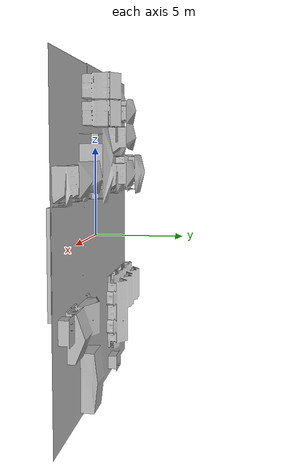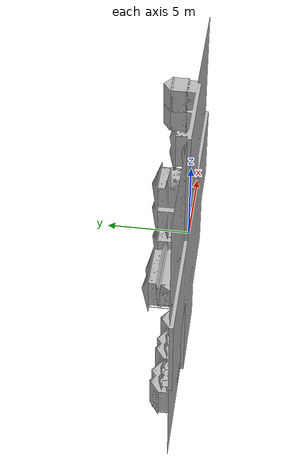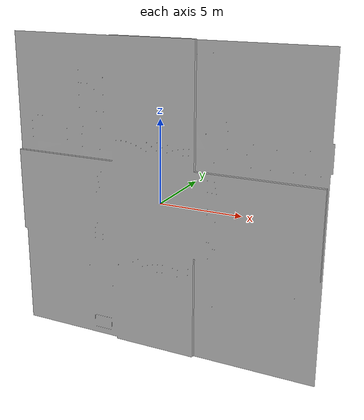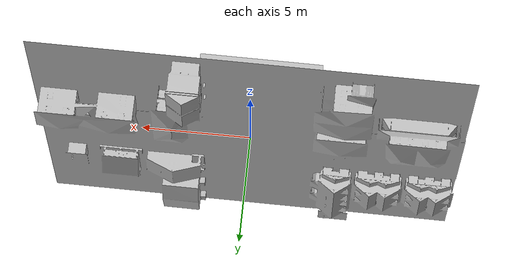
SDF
<?xml version="1.0" ?>
<sdf version="1.6">
  <model name="street_environment">
    <static>true</static>
    <link name="link">

      <!-- COLISIÓN -->
      <collision name="collision">
        <geometry>
          <mesh>
            <scale>0.2 0.2 0.2</scale>
            <uri>model://street_environment/meshes/Street_environment_V02.obj</uri>
          </mesh>
        </geometry>
      </collision>

      <!-- VISUAL -->
      <visual name="visual">
        <geometry>
          <mesh>
            <scale>0.2 0.2 0.2</scale>
             <uri>model://street_environment/meshes/Street_environment_V02.obj</uri>
          </mesh>
        </geometry>
      </visual>

    </link>
  </model>
</sdf>
